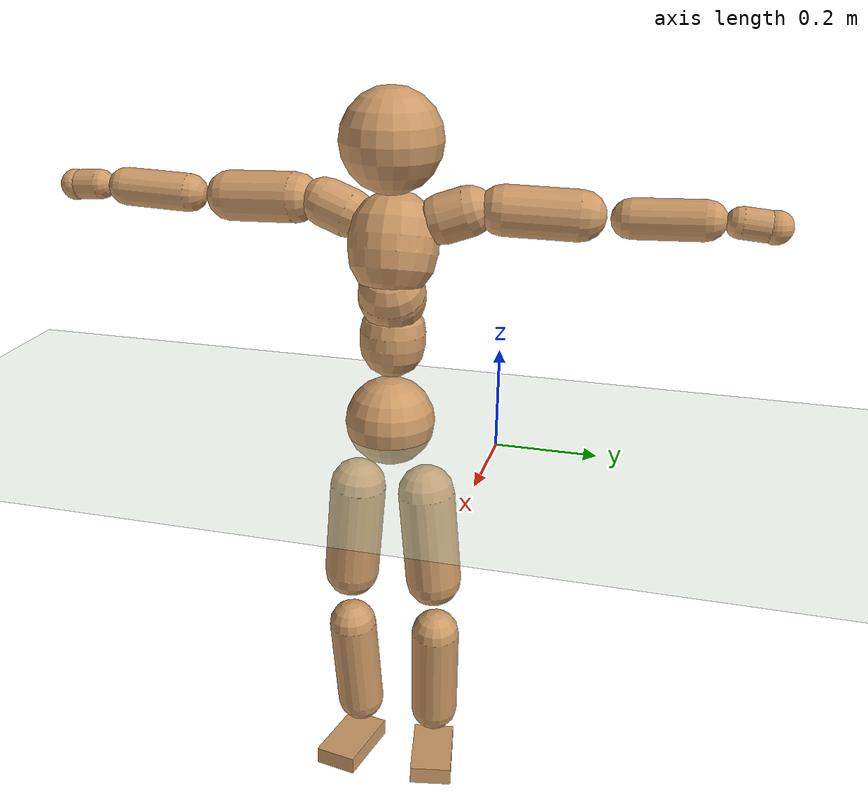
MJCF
<mujoco model="humanoid">
  <compiler coordinate="local"/>
  <default>
    <joint damping="0.0" armature="0.01" stiffness="0.0" limited="true"/>
    <geom conaffinity="1" condim="3" contype="7" margin="0.001" rgba="0.8 0.6 .4 1"/>
  </default>
  <asset>
    <texture type="skybox" builtin="gradient" rgb1=".4 .5 .6" rgb2="0 0 0" width="100" height="100"/>
    <texture builtin="flat" height="1278" mark="cross" markrgb="1 1 1" name="texgeom" random="0.01" rgb1="0.8 0.6 0.4" rgb2="0.8 0.6 0.4" type="cube" width="127"/>
    <texture builtin="checker" height="100" name="texplane" rgb1="0 0 0" rgb2="0.8 0.8 0.8" type="2d" width="100"/>
    <material name="MatPlane" reflectance="0.5" shininess="1" specular="1" texrepeat="60 60" texture="texplane"/>
    <material name="geom" texture="texgeom" texuniform="true"/>
  </asset>
  <worldbody>
    <light cutoff="100" diffuse="1 1 1" dir="-0 0 -1.3" directional="true" exponent="1" pos="0 0 1.3" specular=".1 .1 .1"/>
    <geom conaffinity="1" condim="3" name="floor" pos="0 0 0" rgba="0.8 0.9 0.8 1" size="100 100 .2" type="plane" material="MatPlane"/>
    <body name="Pelvis" pos="-0.0004 -0.2221 0.0278">
      <freejoint name="Pelvis"/>
      <geom type="sphere" contype="1" conaffinity="1" density="500" size="0.0916" pos="0.0000 0.0000 0.0000" name="Pelvis"/>
      <body name="L_Hip" pos="-0.0077 0.0696 -0.0896">
        <joint name="L_Hip_x" type="hinge" pos="0 0 0" axis="1 0 0" stiffness="800" damping="80" armature="0.02" range="-180.0000 180.0000"/>
        <joint name="L_Hip_y" type="hinge" pos="0 0 0" axis="0 1 0" stiffness="800" damping="80" armature="0.02" range="-180.0000 180.0000"/>
        <joint name="L_Hip_z" type="hinge" pos="0 0 0" axis="0 0 1" stiffness="800" damping="80" armature="0.02" range="-180.0000 180.0000"/>
        <geom type="capsule" contype="1" conaffinity="1" density="500" fromto="-0.0016 0.0056 -0.0694 -0.0062 0.0224 -0.2777" size="0.0595" name="L_Hip"/>
        <body name="L_Knee" pos="-0.0078 0.028 -0.3471">
          <joint name="L_Knee_x" type="hinge" pos="0 0 0" axis="1 0 0" stiffness="800" damping="80" armature="0.02" range="-180.0000 180.0000"/>
          <joint name="L_Knee_y" type="hinge" pos="0 0 0" axis="0 1 0" stiffness="800" damping="80" armature="0.02" range="-180.0000 180.0000"/>
          <joint name="L_Knee_z" type="hinge" pos="0 0 0" axis="0 0 1" stiffness="800" damping="80" armature="0.02" range="-180.0000 180.0000"/>
          <geom type="capsule" contype="1" conaffinity="1" density="500" fromto="-0.0083 -0.0023 -0.0726 -0.0330 -0.0090 -0.2906" size="0.0521" name="L_Knee"/>
          <body name="L_Ankle" pos="-0.0413 -0.0113 -0.3632">
            <joint name="L_Ankle_x" type="hinge" pos="0 0 0" axis="1 0 0" stiffness="800" damping="80" armature="0.02" range="-180.0000 180.0000"/>
            <joint name="L_Ankle_y" type="hinge" pos="0 0 0" axis="0 1 0" stiffness="800" damping="80" armature="0.02" range="-180.0000 180.0000"/>
            <joint name="L_Ankle_z" type="hinge" pos="0 0 0" axis="0 0 1" stiffness="800" damping="80" armature="0.02" range="-180.0000 180.0000"/>
            <geom type="box" contype="1" conaffinity="1" density="500" pos="0.0561 0.0113 -0.0262" size="0.0805 0.0452 0.0196" quat="0.9951 0.0000 0.0000 0.0993" name="L_Ankle"/>
            <body name="L_Toe" pos="0.1121 0.0226 -0.0524">
              <joint name="L_Toe_x" type="hinge" pos="0 0 0" axis="1 0 0" stiffness="500" damping="50" armature="0.02" range="-180.0000 180.0000"/>
              <joint name="L_Toe_y" type="hinge" pos="0 0 0" axis="0 1 0" stiffness="500" damping="50" armature="0.02" range="-180.0000 180.0000"/>
              <joint name="L_Toe_z" type="hinge" pos="0 0 0" axis="0 0 1" stiffness="500" damping="50" armature="0.02" range="-180.0000 180.0000"/>
              <geom type="box" contype="1" conaffinity="1" density="500" pos="0.0000 0.0000 0.0258" size="0.0009 0.0023 0.001" quat="0.9944 0.0000 0.0000 0.1059" name="L_Toe"/>
            </body>
          </body>
        </body>
      </body>
      <body name="R_Hip" pos="-0.0048 -0.0669 -0.0891">
        <joint name="R_Hip_x" type="hinge" pos="0 0 0" axis="1 0 0" stiffness="800" damping="80" armature="0.02" range="-180.0000 180.0000"/>
        <joint name="R_Hip_y" type="hinge" pos="0 0 0" axis="0 1 0" stiffness="800" damping="80" armature="0.02" range="-180.0000 180.0000"/>
        <joint name="R_Hip_z" type="hinge" pos="0 0 0" axis="0 0 1" stiffness="800" damping="80" armature="0.02" range="-180.0000 180.0000"/>
        <geom type="capsule" contype="1" conaffinity="1" density="500" fromto="-0.0020 -0.0065 -0.0708 -0.0081 -0.0261 -0.2830" size="0.0589" name="R_Hip"/>
        <body name="R_Knee" pos="-0.0101 -0.0326 -0.3538">
          <joint name="R_Knee_x" type="hinge" pos="0 0 0" axis="1 0 0" stiffness="800" damping="80" armature="0.02" range="-180.0000 180.0000"/>
          <joint name="R_Knee_y" type="hinge" pos="0 0 0" axis="0 1 0" stiffness="800" damping="80" armature="0.02" range="-180.0000 180.0000"/>
          <joint name="R_Knee_z" type="hinge" pos="0 0 0" axis="0 0 1" stiffness="800" damping="80" armature="0.02" range="-180.0000 180.0000"/>
          <geom type="capsule" contype="1" conaffinity="1" density="500" fromto="-0.0081 0.0028 -0.0728 -0.0322 0.0111 -0.2911" size="0.0524" name="R_Knee"/>
          <body name="R_Ankle" pos="-0.0403 0.0138 -0.3639">
            <joint name="R_Ankle_x" type="hinge" pos="0 0 0" axis="1 0 0" stiffness="800" damping="80" armature="0.02" range="-180.0000 180.0000"/>
            <joint name="R_Ankle_y" type="hinge" pos="0 0 0" axis="0 1 0" stiffness="800" damping="80" armature="0.02" range="-180.0000 180.0000"/>
            <joint name="R_Ankle_z" type="hinge" pos="0 0 0" axis="0 0 1" stiffness="800" damping="80" armature="0.02" range="-180.0000 180.0000"/>
            <geom type="box" contype="1" conaffinity="1" density="500" pos="0.0578 -0.0105 -0.0219" size="0.0814 0.0459 0.0193" quat="0.9960 0.0000 0.0000 -0.0894" name="R_Ankle"/>
            <body name="R_Toe" pos="0.1156 -0.0209 -0.0438">
              <joint name="R_Toe_x" type="hinge" pos="0 0 0" axis="1 0 0" stiffness="500" damping="50" armature="0.02" range="-180.0000 180.0000"/>
              <joint name="R_Toe_y" type="hinge" pos="0 0 0" axis="0 1 0" stiffness="500" damping="50" armature="0.02" range="-180.0000 180.0000"/>
              <joint name="R_Toe_z" type="hinge" pos="0 0 0" axis="0 0 1" stiffness="500" damping="50" armature="0.02" range="-180.0000 180.0000"/>
              <geom type="box" contype="1" conaffinity="1" density="500" pos="0.0000 0.0000 0.0241" size="0.0009 0.0023 0.0011" quat="0.9968 0.0000 0.0000 -0.0796" name="R_Toe"/>
            </body>
          </body>
        </body>
      </body>
      <body name="Torso" pos="-0.0221 -0.0027 0.1034">
        <joint name="Torso_x" type="hinge" pos="0 0 0" axis="1 0 0" stiffness="1000" damping="100" armature="0.02" range="-180.0000 180.0000"/>
        <joint name="Torso_y" type="hinge" pos="0 0 0" axis="0 1 0" stiffness="1000" damping="100" armature="0.02" range="-180.0000 180.0000"/>
        <joint name="Torso_z" type="hinge" pos="0 0 0" axis="0 0 1" stiffness="1000" damping="100" armature="0.02" range="-180.0000 180.0000"/>
        <geom type="capsule" contype="1" conaffinity="1" density="500" fromto="-0.0008 0.0023 0.0793 -0.0005 0.0015 0.0529" size="0.066495" name="Torso"/>
        <body name="Spine" pos="-0.0013 0.0038 0.1322">
          <joint name="Spine_x" type="hinge" pos="0 0 0" axis="1 0 0" stiffness="1000" damping="100" armature="0.02" range="-180.0000 180.0000"/>
          <joint name="Spine_y" type="hinge" pos="0 0 0" axis="0 1 0" stiffness="1000" damping="100" armature="0.02" range="-180.0000 180.0000"/>
          <joint name="Spine_z" type="hinge" pos="0 0 0" axis="0 0 1" stiffness="1000" damping="100" armature="0.02" range="-180.0000 180.0000"/>
          <geom type="capsule" contype="1" conaffinity="1" density="500" fromto="0.0175 0.0012 0.0306 0.0116 0.0008 0.0204" size="0.067704" name="Spine"/>
          <body name="Chest" pos="0.0291 0.002 0.051">
            <joint name="Chest_x" type="hinge" pos="0 0 0" axis="1 0 0" stiffness="1000" damping="100" armature="0.02" range="-180.0000 180.0000"/>
            <joint name="Chest_y" type="hinge" pos="0 0 0" axis="0 1 0" stiffness="1000" damping="100" armature="0.02" range="-180.0000 180.0000"/>
            <joint name="Chest_z" type="hinge" pos="0 0 0" axis="0 0 1" stiffness="1000" damping="100" armature="0.02" range="-180.0000 180.0000"/>
            <geom type="capsule" contype="1" conaffinity="1" density="500" fromto="-0.0274 -0.0005 0.0893 -0.0183 -0.0004 0.0595" size="0.089001" name="Chest"/>
            <body name="Neck" pos="-0.0525 -0.0009 0.2108">
              <joint name="Neck_x" type="hinge" pos="0 0 0" axis="1 0 0" stiffness="500" damping="50" armature="0.02" range="-180.0000 180.0000"/>
              <joint name="Neck_y" type="hinge" pos="0 0 0" axis="0 1 0" stiffness="500" damping="50" armature="0.02" range="-180.0000 180.0000"/>
              <joint name="Neck_z" type="hinge" pos="0 0 0" axis="0 0 1" stiffness="500" damping="50" armature="0.02" range="-180.0000 180.0000"/>
              <geom type="capsule" contype="1" conaffinity="1" density="500" fromto="0.0105 0.0008 0.0128 0.0421 0.0032 0.0510" size="0.038409" name="Neck"/>
              <body name="Head" pos="0.0526 0.004 0.0638">
                <joint name="Head_x" type="hinge" pos="0 0 0" axis="1 0 0" stiffness="500" damping="50" armature="0.02" range="-180.0000 180.0000"/>
                <joint name="Head_y" type="hinge" pos="0 0 0" axis="0 1 0" stiffness="500" damping="50" armature="0.02" range="-180.0000 180.0000"/>
                <joint name="Head_z" type="hinge" pos="0 0 0" axis="0 0 1" stiffness="500" damping="50" armature="0.02" range="-180.0000 180.0000"/>
                <geom type="sphere" contype="1" conaffinity="1" density="500" size="0.0996" pos="0.0000 0.0000 0.0000" name="Head"/>
              </body>
            </body>
            <body name="L_Thorax" pos="-0.0395 0.0748 0.1192">
              <joint name="L_Thorax_x" type="hinge" pos="0 0 0" axis="1 0 0" stiffness="500" damping="50" armature="0.02" range="-180.0000 180.0000"/>
              <joint name="L_Thorax_y" type="hinge" pos="0 0 0" axis="0 1 0" stiffness="500" damping="50" armature="0.02" range="-180.0000 180.0000"/>
              <joint name="L_Thorax_z" type="hinge" pos="0 0 0" axis="0 0 1" stiffness="500" damping="50" armature="0.02" range="-180.0000 180.0000"/>
              <geom type="capsule" contype="1" conaffinity="1" density="500" fromto="-0.0014 0.0169 0.0058 -0.0056 0.0674 0.0234" size="0.0493" name="L_Thorax"/>
              <body name="L_Shoulder" pos="-0.0071 0.0843 0.0292">
                <joint name="L_Shoulder_x" type="hinge" pos="0 0 0" axis="1 0 0" stiffness="500" damping="50" armature="0.02" range="-720.0000 720.0000"/>
                <joint name="L_Shoulder_y" type="hinge" pos="0 0 0" axis="0 1 0" stiffness="500" damping="50" armature="0.02" range="-720.0000 720.0000"/>
                <joint name="L_Shoulder_z" type="hinge" pos="0 0 0" axis="0 0 1" stiffness="500" damping="50" armature="0.02" range="-720.0000 720.0000"/>
                <geom type="capsule" contype="1" conaffinity="1" density="500" fromto="-0.0053 0.0479 -0.0017 -0.0212 0.1918 -0.0068" size="0.0491" name="L_Shoulder"/>
                <body name="L_Elbow" pos="-0.0265 0.2397 -0.0086">
                  <joint name="L_Elbow_x" type="hinge" pos="0 0 0" axis="1 0 0" stiffness="500" damping="50" armature="0.02" range="-720.0000 720.0000"/>
                  <joint name="L_Elbow_y" type="hinge" pos="0 0 0" axis="0 1 0" stiffness="500" damping="50" armature="0.02" range="-720.0000 720.0000"/>
                  <joint name="L_Elbow_z" type="hinge" pos="0 0 0" axis="0 0 1" stiffness="500" damping="50" armature="0.02" range="-720.0000 720.0000"/>
                  <geom type="capsule" contype="1" conaffinity="1" density="500" fromto="-0.0000 0.0452 0.0015 -0.0001 0.1807 0.0062" size="0.0385" name="L_Elbow"/>
                  <body name="L_Wrist" pos="-0.0001 0.2259 0.0077">
                    <joint name="L_Wrist_x" type="hinge" pos="0 0 0" axis="1 0 0" stiffness="300" damping="30" armature="0.02" range="-180.0000 180.0000"/>
                    <joint name="L_Wrist_y" type="hinge" pos="0 0 0" axis="0 1 0" stiffness="300" damping="30" armature="0.02" range="-180.0000 180.0000"/>
                    <joint name="L_Wrist_z" type="hinge" pos="0 0 0" axis="0 0 1" stiffness="300" damping="30" armature="0.02" range="-180.0000 180.0000"/>
                    <geom type="capsule" contype="1" conaffinity="1" density="500" fromto="-0.0026 0.0156 -0.0019 -0.0103 0.0623 -0.0074" size="0.0297" name="L_Wrist"/>
                    <body name="L_Hand" pos="-0.0129 0.0779 -0.0093">
                      <joint name="L_Hand_x" type="hinge" pos="0 0 0" axis="1 0 0" stiffness="300" damping="30" armature="0.02" range="-180.0000 180.0000"/>
                      <joint name="L_Hand_y" type="hinge" pos="0 0 0" axis="0 1 0" stiffness="300" damping="30" armature="0.02" range="-180.0000 180.0000"/>
                      <joint name="L_Hand_z" type="hinge" pos="0 0 0" axis="0 0 1" stiffness="300" damping="30" armature="0.02" range="-180.0000 180.0000"/>
                      <geom type="sphere" contype="1" conaffinity="1" density="500" size="0.0315" pos="0.0000 0.0000 0.0000" name="L_Hand"/>
                    </body>
                  </body>
                </body>
              </body>
            </body>
            <body name="R_Thorax" pos="-0.0452 -0.0766 0.1165">
              <joint name="R_Thorax_x" type="hinge" pos="0 0 0" axis="1 0 0" stiffness="500" damping="50" armature="0.02" range="-180.0000 180.0000"/>
              <joint name="R_Thorax_y" type="hinge" pos="0 0 0" axis="0 1 0" stiffness="500" damping="50" armature="0.02" range="-180.0000 180.0000"/>
              <joint name="R_Thorax_z" type="hinge" pos="0 0 0" axis="0 0 1" stiffness="500" damping="50" armature="0.02" range="-180.0000 180.0000"/>
              <geom type="capsule" contype="1" conaffinity="1" density="500" fromto="-0.0021 -0.0178 0.0061 -0.0084 -0.0713 0.0245" size="0.0487" name="R_Thorax"/>
              <body name="R_Shoulder" pos="-0.0104 -0.0891 0.0307">
                <joint name="R_Shoulder_x" type="hinge" pos="0 0 0" axis="1 0 0" stiffness="500" damping="50" armature="0.02" range="-720.0000 720.0000"/>
                <joint name="R_Shoulder_y" type="hinge" pos="0 0 0" axis="0 1 0" stiffness="500" damping="50" armature="0.02" range="-720.0000 720.0000"/>
                <joint name="R_Shoulder_z" type="hinge" pos="0 0 0" axis="0 0 1" stiffness="500" damping="50" armature="0.02" range="-720.0000 720.0000"/>
                <geom type="capsule" contype="1" conaffinity="1" density="500" fromto="-0.0039 -0.0473 -0.0023 -0.0157 -0.1891 -0.0091" size="0.0507" name="R_Shoulder"/>
                <body name="R_Elbow" pos="-0.0196 -0.2364 -0.0114">
                  <joint name="R_Elbow_x" type="hinge" pos="0 0 0" axis="1 0 0" stiffness="500" damping="50" armature="0.02" range="-720.0000 720.0000"/>
                  <joint name="R_Elbow_y" type="hinge" pos="0 0 0" axis="0 1 0" stiffness="500" damping="50" armature="0.02" range="-720.0000 720.0000"/>
                  <joint name="R_Elbow_z" type="hinge" pos="0 0 0" axis="0 0 1" stiffness="500" damping="50" armature="0.02" range="-720.0000 720.0000"/>
                  <geom type="capsule" contype="1" conaffinity="1" density="500" fromto="-0.0007 -0.0470 0.0016 -0.0028 -0.1879 0.0064" size="0.0388" name="R_Elbow"/>
                  <body name="R_Wrist" pos="-0.0035 -0.2348 0.008">
                    <joint name="R_Wrist_x" type="hinge" pos="0 0 0" axis="1 0 0" stiffness="300" damping="30" armature="0.02" range="-180.0000 180.0000"/>
                    <joint name="R_Wrist_y" type="hinge" pos="0 0 0" axis="0 1 0" stiffness="300" damping="30" armature="0.02" range="-180.0000 180.0000"/>
                    <joint name="R_Wrist_z" type="hinge" pos="0 0 0" axis="0 0 1" stiffness="300" damping="30" armature="0.02" range="-180.0000 180.0000"/>
                    <geom type="capsule" contype="1" conaffinity="1" density="500" fromto="-0.0020 -0.0158 -0.0014 -0.0082 -0.0634 -0.0056" size="0.0307" name="R_Wrist"/>
                    <body name="R_Hand" pos="-0.0102 -0.0792 -0.007">
                      <joint name="R_Hand_x" type="hinge" pos="0 0 0" axis="1 0 0" stiffness="300" damping="30" armature="0.02" range="-180.0000 180.0000"/>
                      <joint name="R_Hand_y" type="hinge" pos="0 0 0" axis="0 1 0" stiffness="300" damping="30" armature="0.02" range="-180.0000 180.0000"/>
                      <joint name="R_Hand_z" type="hinge" pos="0 0 0" axis="0 0 1" stiffness="300" damping="30" armature="0.02" range="-180.0000 180.0000"/>
                      <geom type="sphere" contype="1" conaffinity="1" density="500" size="0.0320" pos="0.0000 0.0000 0.0000" name="R_Hand"/>
                    </body>
                  </body>
                </body>
              </body>
            </body>
          </body>
        </body>
      </body>
    </body>
  </worldbody>
  <actuator>
    <motor name="L_Hip_x" joint="L_Hip_x" gear="500"/>
    <motor name="L_Hip_y" joint="L_Hip_y" gear="500"/>
    <motor name="L_Hip_z" joint="L_Hip_z" gear="500"/>
    <motor name="L_Knee_x" joint="L_Knee_x" gear="500"/>
    <motor name="L_Knee_y" joint="L_Knee_y" gear="500"/>
    <motor name="L_Knee_z" joint="L_Knee_z" gear="500"/>
    <motor name="L_Ankle_x" joint="L_Ankle_x" gear="500"/>
    <motor name="L_Ankle_y" joint="L_Ankle_y" gear="500"/>
    <motor name="L_Ankle_z" joint="L_Ankle_z" gear="500"/>
    <motor name="L_Toe_x" joint="L_Toe_x" gear="500"/>
    <motor name="L_Toe_y" joint="L_Toe_y" gear="500"/>
    <motor name="L_Toe_z" joint="L_Toe_z" gear="500"/>
    <motor name="R_Hip_x" joint="R_Hip_x" gear="500"/>
    <motor name="R_Hip_y" joint="R_Hip_y" gear="500"/>
    <motor name="R_Hip_z" joint="R_Hip_z" gear="500"/>
    <motor name="R_Knee_x" joint="R_Knee_x" gear="500"/>
    <motor name="R_Knee_y" joint="R_Knee_y" gear="500"/>
    <motor name="R_Knee_z" joint="R_Knee_z" gear="500"/>
    <motor name="R_Ankle_x" joint="R_Ankle_x" gear="500"/>
    <motor name="R_Ankle_y" joint="R_Ankle_y" gear="500"/>
    <motor name="R_Ankle_z" joint="R_Ankle_z" gear="500"/>
    <motor name="R_Toe_x" joint="R_Toe_x" gear="500"/>
    <motor name="R_Toe_y" joint="R_Toe_y" gear="500"/>
    <motor name="R_Toe_z" joint="R_Toe_z" gear="500"/>
    <motor name="Torso_x" joint="Torso_x" gear="500"/>
    <motor name="Torso_y" joint="Torso_y" gear="500"/>
    <motor name="Torso_z" joint="Torso_z" gear="500"/>
    <motor name="Spine_x" joint="Spine_x" gear="500"/>
    <motor name="Spine_y" joint="Spine_y" gear="500"/>
    <motor name="Spine_z" joint="Spine_z" gear="500"/>
    <motor name="Chest_x" joint="Chest_x" gear="500"/>
    <motor name="Chest_y" joint="Chest_y" gear="500"/>
    <motor name="Chest_z" joint="Chest_z" gear="500"/>
    <motor name="Neck_x" joint="Neck_x" gear="500"/>
    <motor name="Neck_y" joint="Neck_y" gear="500"/>
    <motor name="Neck_z" joint="Neck_z" gear="500"/>
    <motor name="Head_x" joint="Head_x" gear="500"/>
    <motor name="Head_y" joint="Head_y" gear="500"/>
    <motor name="Head_z" joint="Head_z" gear="500"/>
    <motor name="L_Thorax_x" joint="L_Thorax_x" gear="500"/>
    <motor name="L_Thorax_y" joint="L_Thorax_y" gear="500"/>
    <motor name="L_Thorax_z" joint="L_Thorax_z" gear="500"/>
    <motor name="L_Shoulder_x" joint="L_Shoulder_x" gear="500"/>
    <motor name="L_Shoulder_y" joint="L_Shoulder_y" gear="500"/>
    <motor name="L_Shoulder_z" joint="L_Shoulder_z" gear="500"/>
    <motor name="L_Elbow_x" joint="L_Elbow_x" gear="500"/>
    <motor name="L_Elbow_y" joint="L_Elbow_y" gear="500"/>
    <motor name="L_Elbow_z" joint="L_Elbow_z" gear="500"/>
    <motor name="L_Wrist_x" joint="L_Wrist_x" gear="500"/>
    <motor name="L_Wrist_y" joint="L_Wrist_y" gear="500"/>
    <motor name="L_Wrist_z" joint="L_Wrist_z" gear="500"/>
    <motor name="L_Hand_x" joint="L_Hand_x" gear="500"/>
    <motor name="L_Hand_y" joint="L_Hand_y" gear="500"/>
    <motor name="L_Hand_z" joint="L_Hand_z" gear="500"/>
    <motor name="R_Thorax_x" joint="R_Thorax_x" gear="500"/>
    <motor name="R_Thorax_y" joint="R_Thorax_y" gear="500"/>
    <motor name="R_Thorax_z" joint="R_Thorax_z" gear="500"/>
    <motor name="R_Shoulder_x" joint="R_Shoulder_x" gear="500"/>
    <motor name="R_Shoulder_y" joint="R_Shoulder_y" gear="500"/>
    <motor name="R_Shoulder_z" joint="R_Shoulder_z" gear="500"/>
    <motor name="R_Elbow_x" joint="R_Elbow_x" gear="500"/>
    <motor name="R_Elbow_y" joint="R_Elbow_y" gear="500"/>
    <motor name="R_Elbow_z" joint="R_Elbow_z" gear="500"/>
    <motor name="R_Wrist_x" joint="R_Wrist_x" gear="500"/>
    <motor name="R_Wrist_y" joint="R_Wrist_y" gear="500"/>
    <motor name="R_Wrist_z" joint="R_Wrist_z" gear="500"/>
    <motor name="R_Hand_x" joint="R_Hand_x" gear="500"/>
    <motor name="R_Hand_y" joint="R_Hand_y" gear="500"/>
    <motor name="R_Hand_z" joint="R_Hand_z" gear="500"/>
  </actuator>
  <contact>
    <exclude body1="Torso" body2="Chest"/>
    <exclude body1="Head" body2="Chest"/>
    <exclude body1="R_Knee" body2="R_Toe"/>
    <exclude body1="R_Knee" body2="L_Ankle"/>
    <exclude body1="R_Knee" body2="L_Toe"/>
    <exclude body1="L_Knee" body2="L_Toe"/>
    <exclude body1="L_Knee" body2="R_Ankle"/>
    <exclude body1="L_Knee" body2="R_Toe"/>
    <exclude body1="L_Shoulder" body2="Chest"/>
    <exclude body1="R_Shoulder" body2="Chest"/>
  </contact>
  <sensor/>
  <size njmax="700" nconmax="700"/>
</mujoco>
